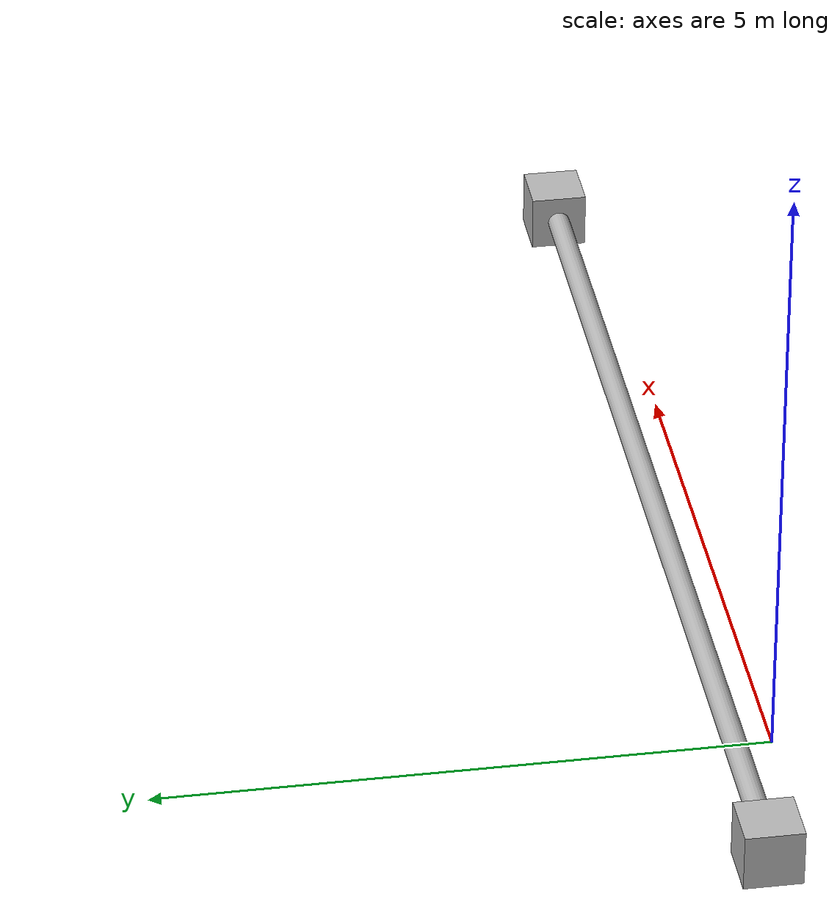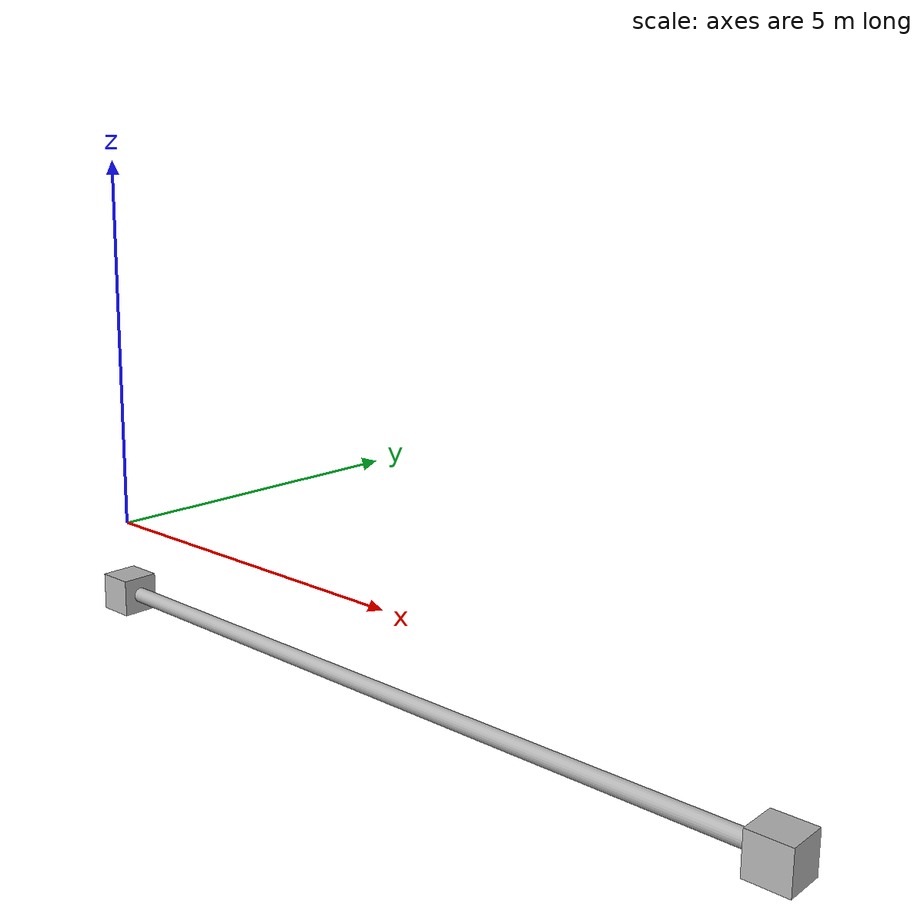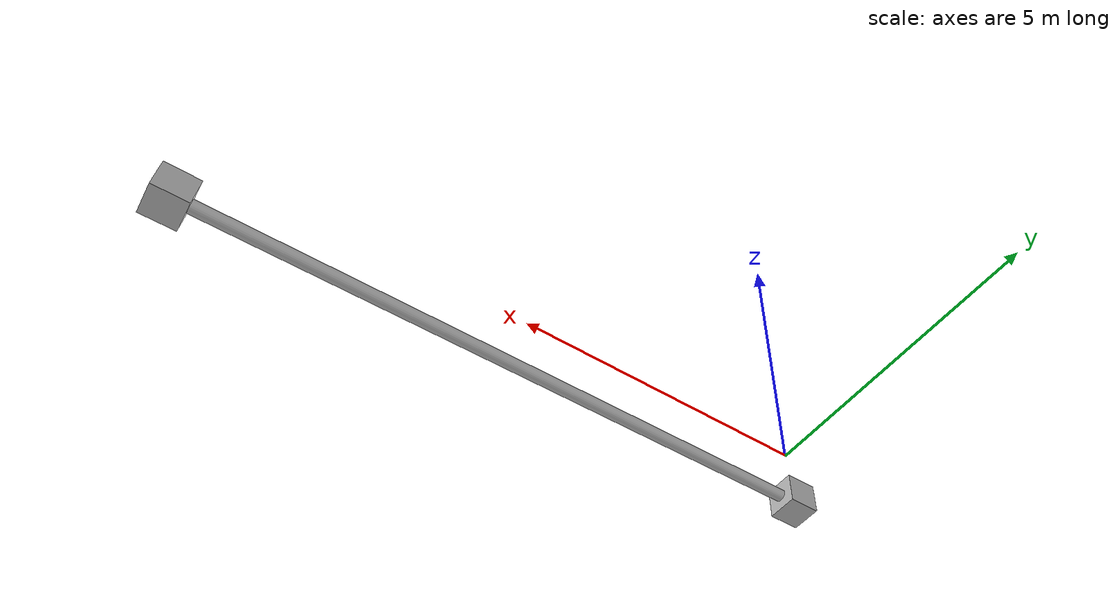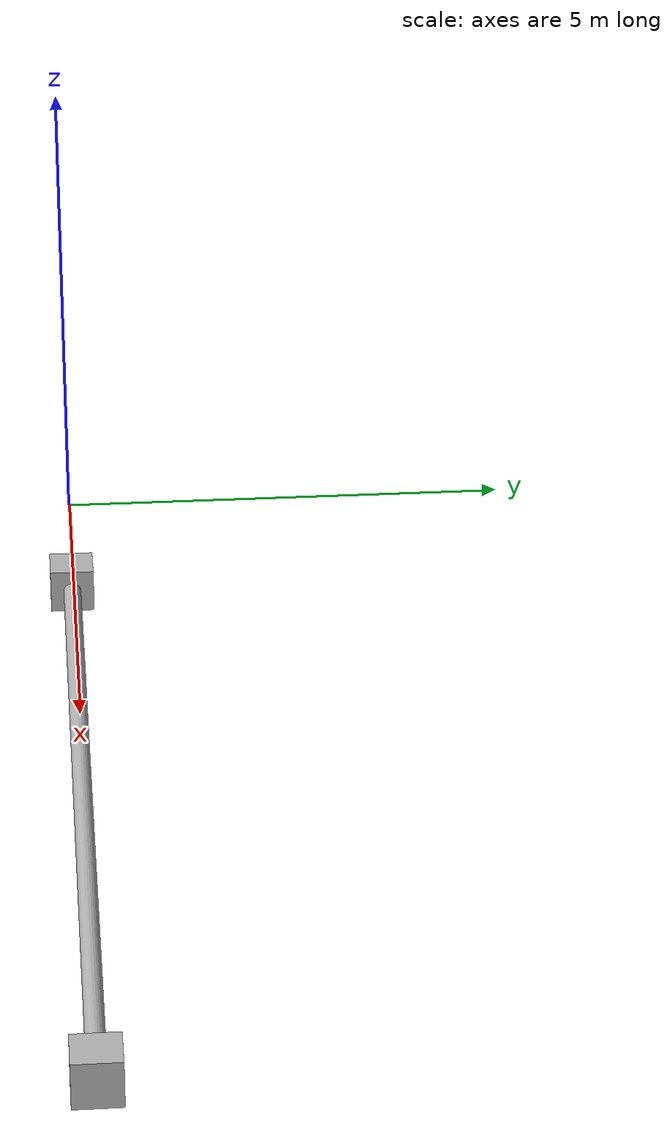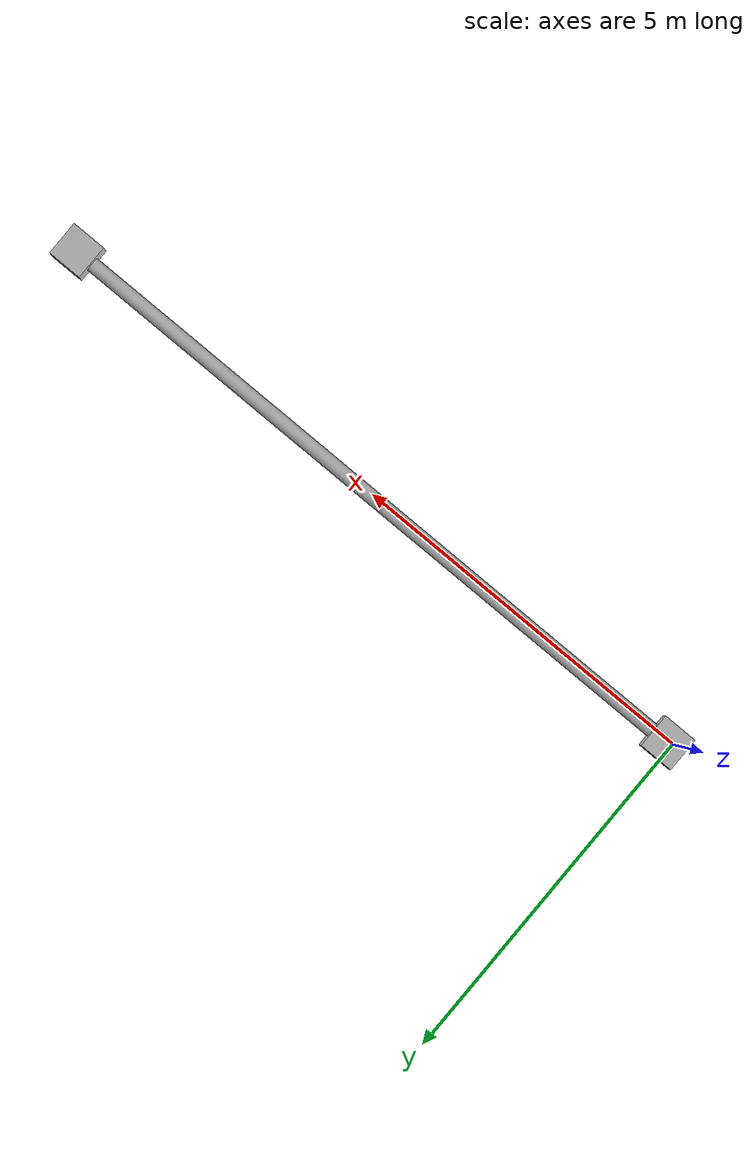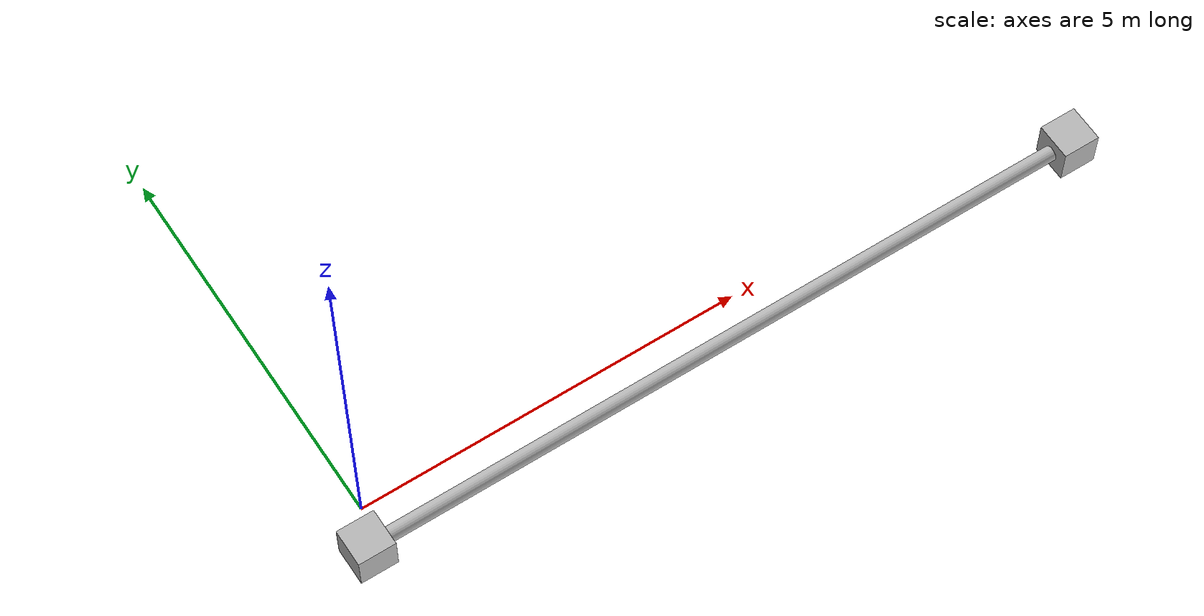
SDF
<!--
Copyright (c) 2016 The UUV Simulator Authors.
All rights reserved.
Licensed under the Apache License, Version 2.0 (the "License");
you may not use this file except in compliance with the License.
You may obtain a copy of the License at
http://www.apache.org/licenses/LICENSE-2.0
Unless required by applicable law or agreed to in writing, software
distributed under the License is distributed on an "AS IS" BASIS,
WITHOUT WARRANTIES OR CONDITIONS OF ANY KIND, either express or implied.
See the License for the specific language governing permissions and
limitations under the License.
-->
<?xml version="1.0"?>
<sdf version="1.5">
  <model name="umbilical">
    <pose>0 0 -1 0 0 0</pose>
    <static>false</static>

    <link name="base">
      <pose>0 0 0 0 0 0</pose>
      <inertial>
        <inertia>
          <ixx>1</ixx><ixy>0</ixy><ixz>0</ixz>
          <iyy>1</iyy><iyz>0</iyz>
          <izz>1</izz>
        </inertia>
        <mass>1.0</mass>
      </inertial>

      <collision name="collision">
        <geometry>
          <box>
            <size>0.5 0.5 0.5</size>
          </box>
        </geometry>
      </collision>

      <visual name="visual">
        <geometry>
          <box>
            <size>0.5 0.5 0.5</size>
          </box>
        </geometry>
      </visual>
    </link>

    <joint name="world_base_joint" type="fixed">
      <pose>0 0 0 0 0 0</pose>
      <parent>world</parent>
      <child>base</child>
    </joint>

    <link name="segment">
      <pose>5 0 0 0 0 0</pose>
      <inertial>
        <inertia>
          <ixx>1</ixx><ixy>0</ixy><ixz>0</ixz>
          <iyy>1</iyy><iyz>0</iyz>
          <izz>1</izz>
        </inertia>
        <mass>1.0</mass>
      </inertial>

      <collision name="collision">
        <pose>0 0 0 0 1.570796 0</pose>
        <geometry>
          <cylinder>
            <radius>0.1</radius>
            <length>10.0</length>
          </cylinder>
        </geometry>
      </collision>

      <visual name="visual">
        <pose>0 0 0 0 1.570796 0</pose>
        <geometry>
          <cylinder>
            <radius>0.1</radius>
            <length>10.0</length>
          </cylinder>
        </geometry>
      </visual>
    </link>

  <joint name="base_segment_joint" type="universal">
    <pose>-5 0 0 0 0 0</pose>
    <parent>base</parent>
    <child>segment</child>
    <axis>
      <xyz>0 1 0</xyz>
      <limit>
        <lower>-100000000</lower>
        <upper>100000000</upper>
      </limit>
      <dynamics>
        <damping>5</damping>
        <friction>5</friction>
      </dynamics>
    </axis>
    <axis2>
      <xyz>0 0 1</xyz>
      <limit>
        <lower>-100000000</lower>
        <upper>100000000</upper>
      </limit>
      <dynamics>
        <damping>5</damping>
        <friction>5</friction>
      </dynamics>
    </axis2>
  </joint>

  <link name="connector">
    <pose>10 0 0 0 0 0</pose>
    <inertial>
      <inertia>
        <ixx>1</ixx><ixy>0</ixy><ixz>0</ixz>
        <iyy>1</iyy><iyz>0</iyz>
        <izz>1</izz>
      </inertia>
      <mass>1.0</mass>
    </inertial>

    <collision name="collision">
      <pose>0 0 0 0 1.570796 0</pose>
      <geometry>
        <box>
          <size>0.5 0.5 0.5</size>
        </box>
      </geometry>
    </collision>

    <visual name="visual">
      <pose>0 0 0 0 1.570796 0</pose>
      <geometry>
        <box>
          <size>0.5 0.5 0.5</size>
        </box>
      </geometry>
    </visual>
  </link>

  <joint name="segment_connector_joint" type="ball">
    <pose>0 0 0 0 0 0</pose>
    <parent>segment</parent>
    <child>connector</child>
    <axis>
      <xyz>0 1 0</xyz>
      <limit>
        <lower>-100000000</lower>
        <upper>100000000</upper>
      </limit>
      <dynamics>
        <damping>5</damping>
        <friction>5</friction>
      </dynamics>
    </axis>
    <axis2>
      <xyz>0 0 1</xyz>
      <limit>
        <lower>-100000000</lower>
        <upper>100000000</upper>
      </limit>
    </axis2>
  </joint>

  <plugin filename="libumbilical_plugin.so" name="umbilical_plugin">
    <robotNamespace></robotNamespace>
    <connectorLink>connector</connectorLink>
    <baseLink>base</baseLink>
    <maxSegmentLength>2.0</maxSegmentLength>
  </plugin>

</model>
</sdf>
